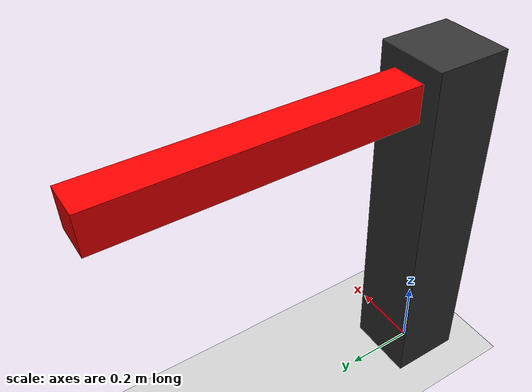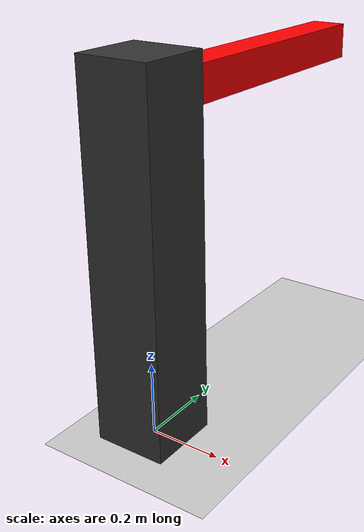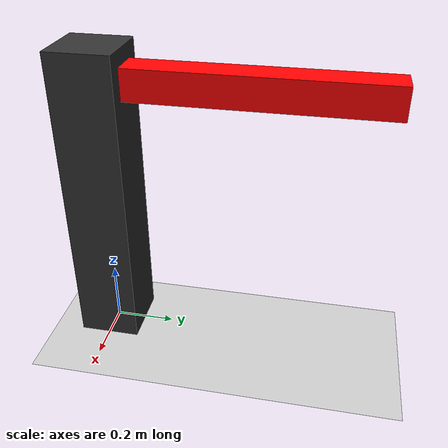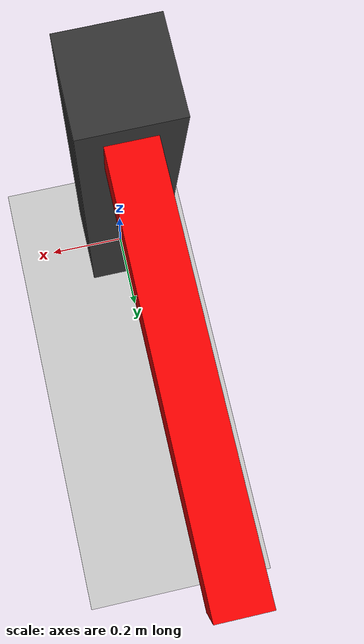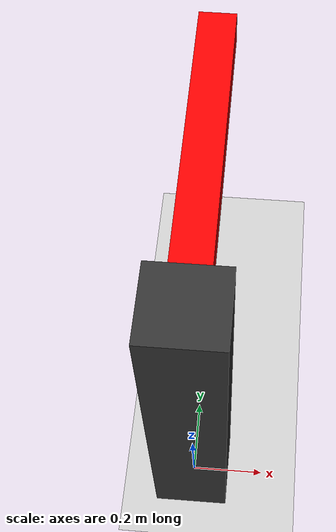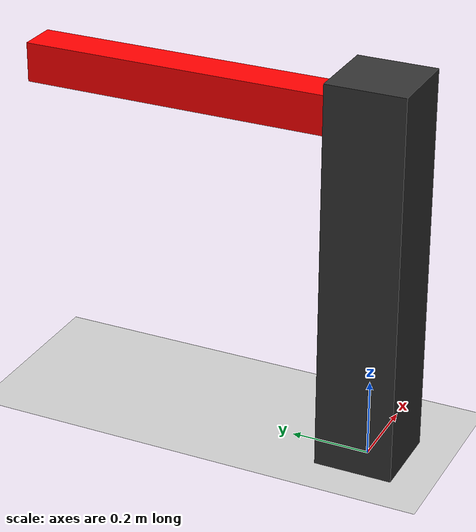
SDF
<?xml version="1.0" ?>
<sdf version="1.7">
    <world name="arm_world">
        <plugin filename="ignition-gazebo-physics-system" name="ignition::gazebo::systems::Physics"/>
        <plugin filename="ignition-gazebo-user-commands-system" name="ignition::gazebo::systems::UserCommands"/>
        <plugin filename="ignition-gazebo-scene-broadcaster-system" name="ignition::gazebo::systems::SceneBroadcaster"/>
        <include><uri>https://fuel.gazebosim.org/1.0/OpenRobotics/models/Sun</uri></include>
        <include><uri>https://fuel.gazebosim.org/1.0/OpenRobotics/models/Ground Plane</uri></include>

        <model name="simple_arm">
            <pose>0 0 0 0 0 0</pose>
            <static>false</static>

            <!-- Publish joint states to Ignition topic -->
            <plugin filename="ignition-gazebo-joint-state-publisher-system"
                    name="ignition::gazebo::systems::JointStatePublisher">
            </plugin>

            <link name="base_link">
                <pose>0 0 0.5 0 0 0</pose> <collision name="base_collision">
                    <geometry><box><size>0.2 0.2 1.0</size></box></geometry>
                </collision>
                <visual name="base_visual">
                    <geometry><box><size>0.2 0.2 1.0</size></box></geometry>
                    <material><ambient>0.2 0.2 0.2 1</ambient></material>
                </visual>
            </link>

            <link name="arm_link">
                <pose>0 0.5 0.9 0 0 0</pose> <inertial> <mass>1.0</mass>
                    <inertia><ixx>0.1</ixx><iyy>0.1</iyy><izz>0.1</izz></inertia>
                </inertial>
                <collision name="arm_collision">
                    <geometry><box><size>0.1 0.8 0.1</size></box></geometry>
                </collision>
                <visual name="arm_visual">
                    <geometry><box><size>0.1 0.8 0.1</size></box></geometry>
                    <material><ambient>1 0 0 1</ambient></material> </visual>
            </link>

            <joint name="shoulder_joint" type="revolute">
                <parent>base_link</parent>
                <child>arm_link</child>
                <axis>
                    <xyz>0 0 1</xyz> <limit><lower>-1.57</lower><upper>1.57</upper></limit>
                </axis>
            </joint>
        </model>
    </world>
</sdf>
